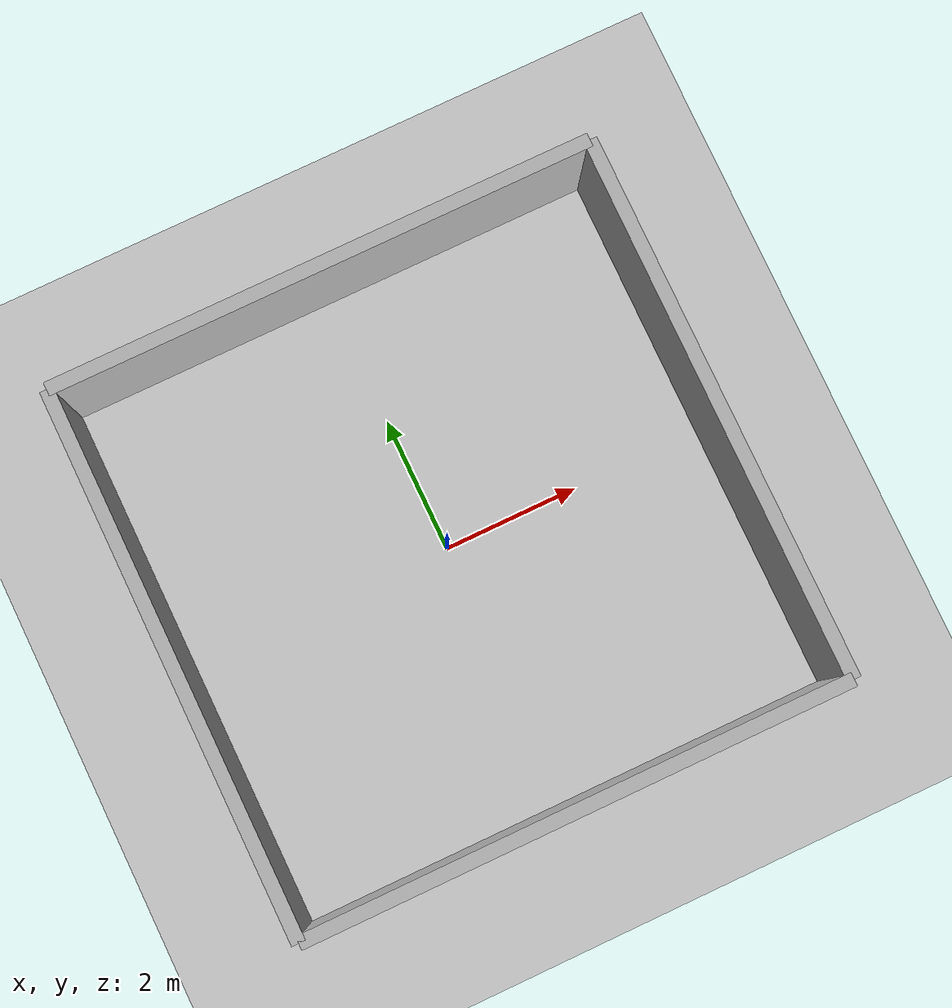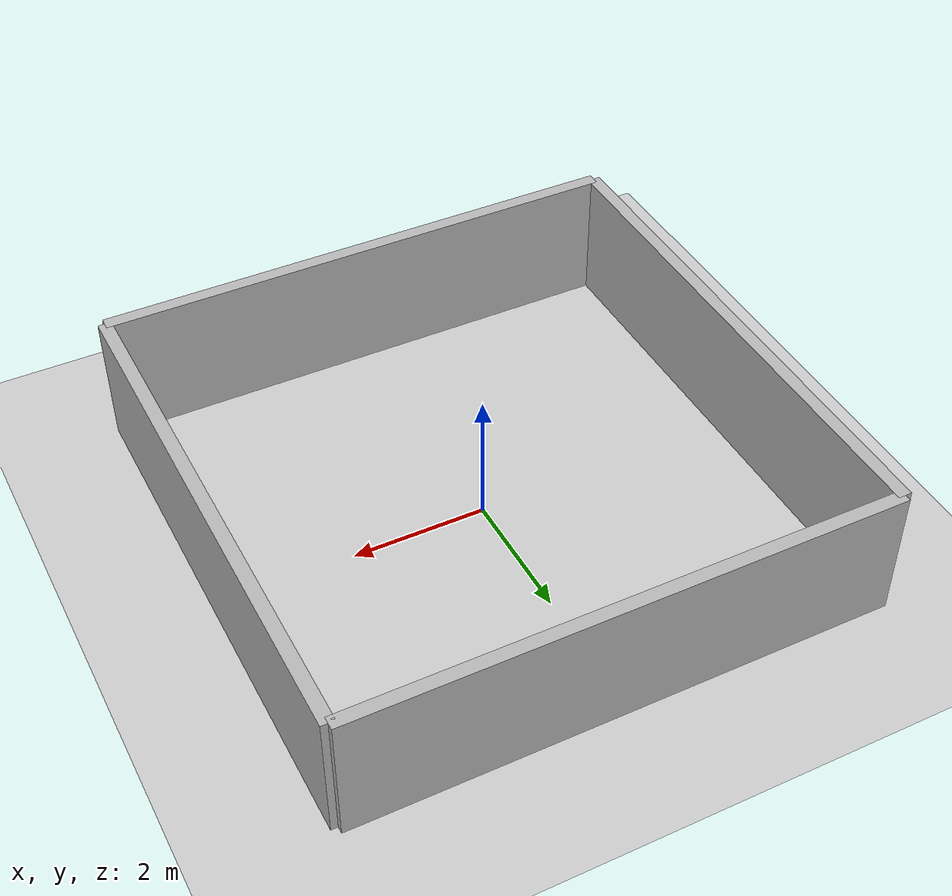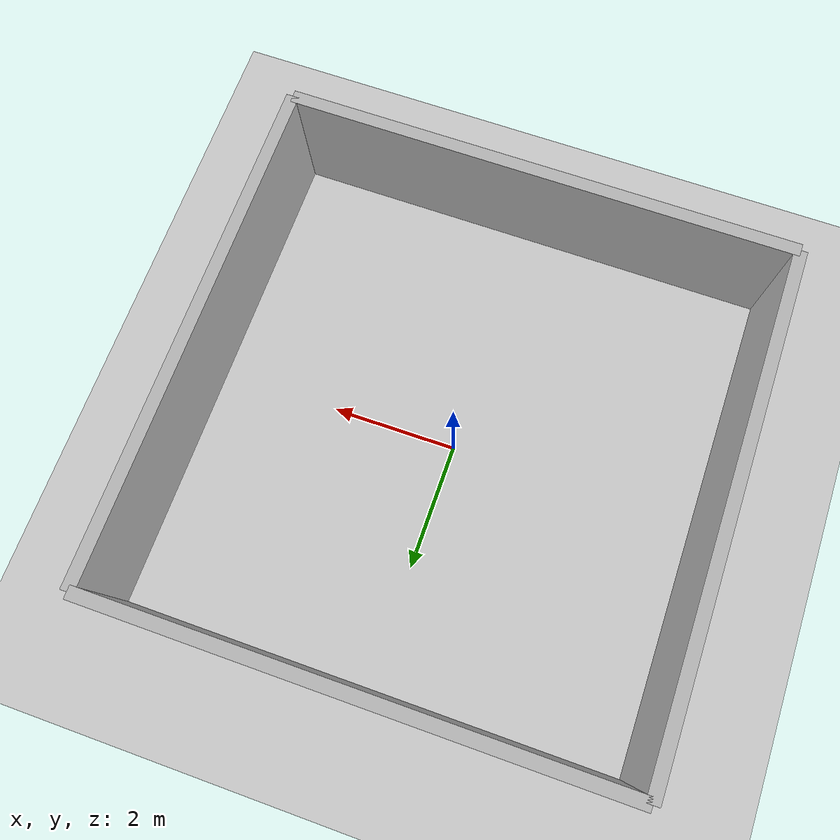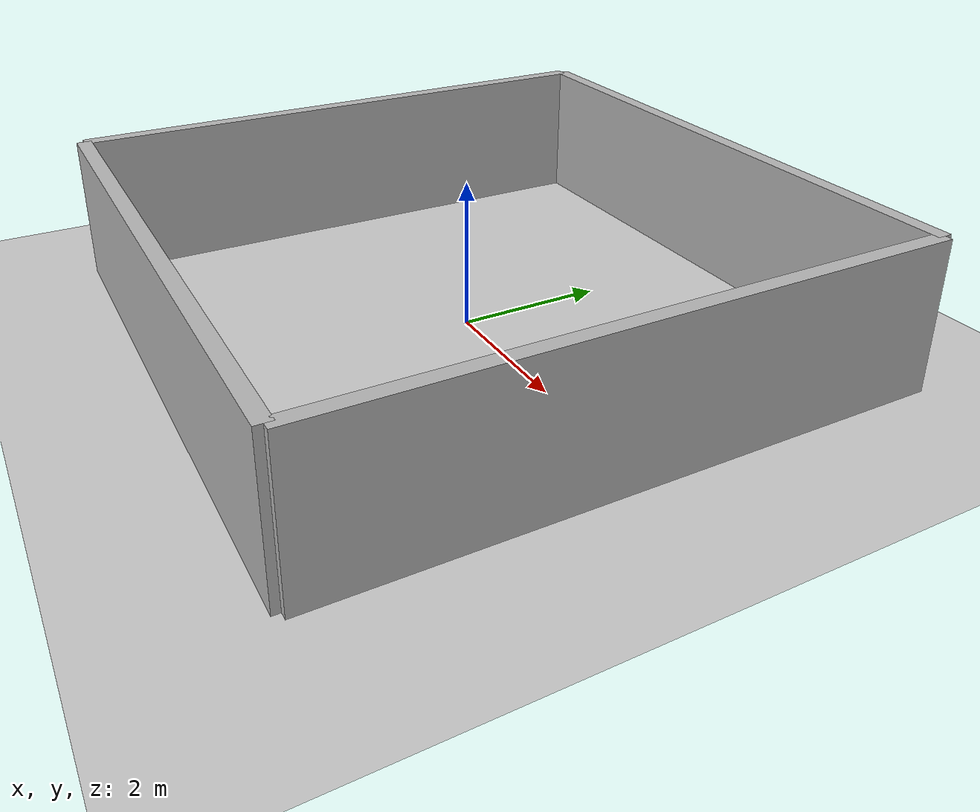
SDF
<?xml version="1.0" ?>
<sdf version="1.6">
  <world name="default">

    <include>
      <uri>model://ground_plane</uri>
    </include>

    <include>
      <uri>model://sun</uri>
    </include>

    <!-- FRONT WALL -->
    <model name="front_wall">
      <static>true</static>
      <link name="link">
        <collision name="collision">
          <geometry>
            <box>
              <size>8 0.2 2</size>
            </box>
          </geometry>
        </collision>
        <visual name="visual">
          <geometry>
            <box>
              <size>8 0.2 2</size>
            </box>
          </geometry>
        </visual>
      </link>
      <pose>0 4 1 0 0 0</pose>
    </model>

    <!-- BACK WALL -->
    <model name="back_wall">
      <static>true</static>
      <link name="link">
        <collision name="collision">
          <geometry>
            <box>
              <size>8 0.2 2</size>
            </box>
          </geometry>
        </collision>
        <visual name="visual">
          <geometry>
            <box>
              <size>8 0.2 2</size>
            </box>
          </geometry>
        </visual>
      </link>
      <pose>0 -4 1 0 0 0</pose>
    </model>

    <!-- LEFT WALL -->
    <model name="left_wall">
      <static>true</static>
      <link name="link">
        <collision name="collision">
          <geometry>
            <box>
              <size>0.2 8 2</size>
            </box>
          </geometry>
        </collision>
        <visual name="visual">
          <geometry>
            <box>
              <size>0.2 8 2</size>
            </box>
          </geometry>
        </visual>
      </link>
      <pose>-4 0 1 0 0 0</pose>
    </model>

    <!-- RIGHT WALL -->
    <model name="right_wall">
      <static>true</static>
      <link name="link">
        <collision name="collision">
          <geometry>
            <box>
              <size>0.2 8 2</size>
            </box>
          </geometry>
        </collision>
        <visual name="visual">
          <geometry>
            <box>
              <size>0.2 8 2</size>
            </box>
          </geometry>
        </visual>
      </link>
      <pose>4 0 1 0 0 0</pose>
    </model>

  </world>
</sdf>
